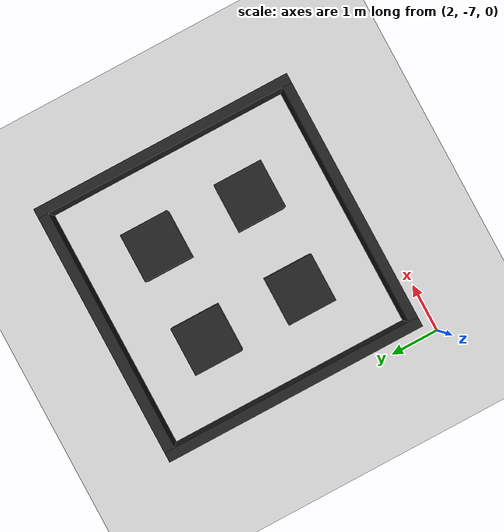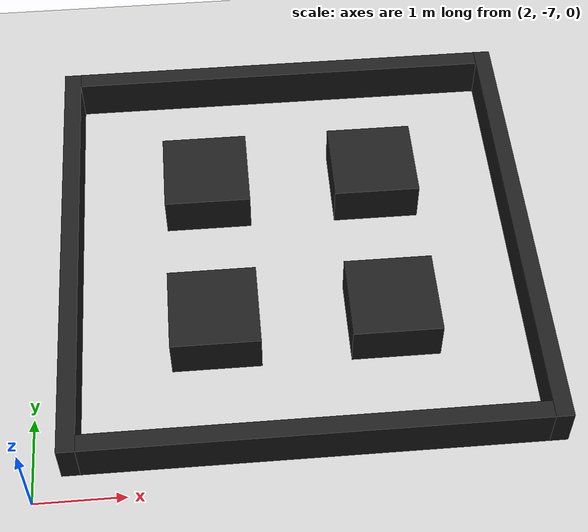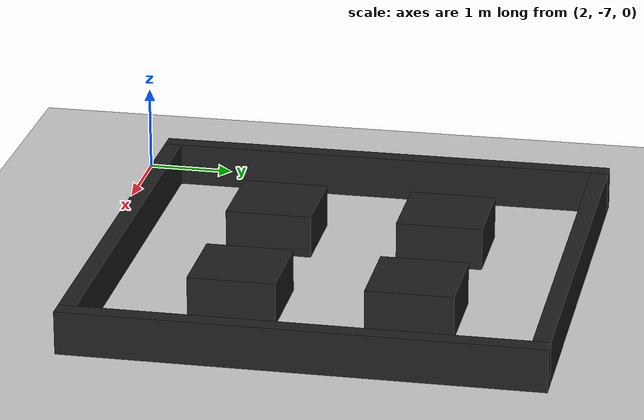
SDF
<sdf version='1.4'>
  <world name='default'>
    <!-- A global light source -->
    <include>
      <uri>model://sun</uri>
    </include>

    <!-- A ground plane -->
    <include>
      <uri>model://ground_plane</uri>
    </include>

    <physics type="ode">
      <real_time_update_rate>1000.0</real_time_update_rate>
      <max_step_size>0.001</max_step_size>
      <real_time_factor>1</real_time_factor>
      <ode>
        <solver>
          <type>quick</type>
          <iters>150</iters>
          <precon_iters>0</precon_iters>
          <sor>1.400000</sor>
          <use_dynamic_moi_rescaling>1</use_dynamic_moi_rescaling>
        </solver>
        <constraints>
          <cfm>0.00001</cfm>
          <erp>0.2</erp>
          <contact_max_correcting_vel>2000.000000</contact_max_correcting_vel>
          <contact_surface_layer>0.01000</contact_surface_layer>
        </constraints>
      </ode>
    </physics>

    <include>
      <uri>model://rmf_3x3</uri>
    </include>

    <scene>
      <ambient>0.4 0.4 0.4 1</ambient>
      <background>0.7 0.7 0.7 1</background>
      <shadows>true</shadows>
    </scene>

    <gui fullscreen='0'>
      <camera name='user_camera'>
        <pose>0.0 0.0 17.0 0 1.5708 -1.5708</pose>
        <view_controller>orbit</view_controller>
      </camera>
    </gui>
  </world>
</sdf>

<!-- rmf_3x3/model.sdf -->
<sdf version='1.5'>
  <model name='3x3'>
    <static>1</static>
    <link name='Wall_EAST'>
      <collision name='Wall_EAST_Collision'>
        <pose>7.6 -4 0.25 0 0 0</pose>
        <geometry>
          <box>
            <size>0.2 5.4 0.5</size>
          </box>
        </geometry>
        <surface>
          <friction>
            <ode>
              <mu>1</mu>
              <mu2>1</mu2>
              <fdir1>0 0 0</fdir1>
              <slip1>0</slip1>
              <slip2>0</slip2>
            </ode>
            <torsional>
              <coefficient>1</coefficient>
              <patch_radius>0</patch_radius>
              <surface_radius>0</surface_radius>
              <use_patch_radius>1</use_patch_radius>
              <ode>
                <slip>0</slip>
              </ode>
            </torsional>
          </friction>
          <bounce>
            <restitution_coefficient>0</restitution_coefficient>
            <threshold>1e+06</threshold>
          </bounce>
          <contact>
            <collide_without_contact>0</collide_without_contact>
            <collide_without_contact_bitmask>1</collide_without_contact_bitmask>
            <collide_bitmask>1</collide_bitmask>
            <ode>
              <soft_cfm>0</soft_cfm>
              <soft_erp>0.2</soft_erp>
              <kp>1e+13</kp>
              <kd>1</kd>
              <max_vel>0.01</max_vel>
              <min_depth>0</min_depth>
            </ode>
            <bullet>
              <split_impulse>1</split_impulse>
              <split_impulse_penetration_threshold>-0.01</split_impulse_penetration_threshold>
              <soft_cfm>0</soft_cfm>
              <soft_erp>0.2</soft_erp>
              <kp>1e+13</kp>
              <kd>1</kd>
            </bullet>
          </contact>
        </surface>
      </collision>

      <visual name='Wall_EAST_Visual'>
        <pose>7.6 -4 0.25 0 0 0</pose>
        <geometry>
          <box>
            <size>0.2 5.4 0.5</size>
          </box>
        </geometry>
        <material>
          <script>
            <name>Gazebo/Black</name>
          </script>
        </material>
      </visual>
    </link>

    <link name='Wall_WEST'>
      <collision name='Wall_WEST_Collision'>
        <pose>2.4 -4 0.25 0 0 0</pose>
        <geometry>
          <box>
            <size>0.2 5.4 0.5</size>
          </box>
        </geometry>
        <surface>
          <friction>
            <ode>
              <mu>1</mu>
              <mu2>1</mu2>
              <fdir1>0 0 0</fdir1>
              <slip1>0</slip1>
              <slip2>0</slip2>
            </ode>
            <torsional>
              <coefficient>1</coefficient>
              <patch_radius>0</patch_radius>
              <surface_radius>0</surface_radius>
              <use_patch_radius>1</use_patch_radius>
              <ode>
                <slip>0</slip>
              </ode>
            </torsional>
          </friction>
          <bounce>
            <restitution_coefficient>0</restitution_coefficient>
            <threshold>1e+06</threshold>
          </bounce>
          <contact>
            <collide_without_contact>0</collide_without_contact>
            <collide_without_contact_bitmask>1</collide_without_contact_bitmask>
            <collide_bitmask>1</collide_bitmask>
            <ode>
              <soft_cfm>0</soft_cfm>
              <soft_erp>0.2</soft_erp>
              <kp>1e+13</kp>
              <kd>1</kd>
              <max_vel>0.01</max_vel>
              <min_depth>0</min_depth>
            </ode>
            <bullet>
              <split_impulse>1</split_impulse>
              <split_impulse_penetration_threshold>-0.01</split_impulse_penetration_threshold>
              <soft_cfm>0</soft_cfm>
              <soft_erp>0.2</soft_erp>
              <kp>1e+13</kp>
              <kd>1</kd>
            </bullet>
          </contact>
        </surface>
      </collision>

      <visual name='Wall_SOUTH_Visual'>
        <pose>2.4 -4 0.25 0 0 0</pose>
        <geometry>
          <box>
            <size>0.2 5.4 0.5</size>
          </box>
        </geometry>
        <material>
          <script>
            <name>Gazebo/Black</name>
          </script>
        </material>
      </visual>
    </link>

    <link name='Wall_SOUTH'>
      <collision name='Wall_SOUTH_Collision'>
        <pose>5 -6.6 0.25 0 0 0</pose>
        <geometry>
          <box>
            <size>5 0.2 0.5</size>
          </box>
        </geometry>
        <surface>
          <friction>
            <ode>
              <mu>1</mu>
              <mu2>1</mu2>
              <fdir1>0 0 0</fdir1>
              <slip1>0</slip1>
              <slip2>0</slip2>
            </ode>
            <torsional>
              <coefficient>1</coefficient>
              <patch_radius>0</patch_radius>
              <surface_radius>0</surface_radius>
              <use_patch_radius>1</use_patch_radius>
              <ode>
                <slip>0</slip>
              </ode>
            </torsional>
          </friction>
          <bounce>
            <restitution_coefficient>0</restitution_coefficient>
            <threshold>1e+06</threshold>
          </bounce>
          <contact>
            <collide_without_contact>0</collide_without_contact>
            <collide_without_contact_bitmask>1</collide_without_contact_bitmask>
            <collide_bitmask>1</collide_bitmask>
            <ode>
              <soft_cfm>0</soft_cfm>
              <soft_erp>0.2</soft_erp>
              <kp>1e+13</kp>
              <kd>1</kd>
              <max_vel>0.01</max_vel>
              <min_depth>0</min_depth>
            </ode>
            <bullet>
              <split_impulse>1</split_impulse>
              <split_impulse_penetration_threshold>-0.01</split_impulse_penetration_threshold>
              <soft_cfm>0</soft_cfm>
              <soft_erp>0.2</soft_erp>
              <kp>1e+13</kp>
              <kd>1</kd>
            </bullet>
          </contact>
        </surface>
      </collision>

      <visual name='Wall_SOUTH_Visual'>
        <pose>5 -6.6 0.25 0 0 0</pose>
        <geometry>
          <box>
            <size>5 0.2 0.5</size>
          </box>
        </geometry>
        <material>
          <script>
            <name>Gazebo/Black</name>
          </script>
        </material>
      </visual>
    </link>

    <link name='Wall_NORTH'>
      <collision name='Wall_NORTH_Collision'>
        <pose>5 -1.4 0.25 0 0 0</pose>
        <geometry>
          <box>
            <size>5 0.2 0.5</size>
          </box>
        </geometry>
        <surface>
          <friction>
            <ode>
              <mu>1</mu>
              <mu2>1</mu2>
              <fdir1>0 0 0</fdir1>
              <slip1>0</slip1>
              <slip2>0</slip2>
            </ode>
            <torsional>
              <coefficient>1</coefficient>
              <patch_radius>0</patch_radius>
              <surface_radius>0</surface_radius>
              <use_patch_radius>1</use_patch_radius>
              <ode>
                <slip>0</slip>
              </ode>
            </torsional>
          </friction>
          <bounce>
            <restitution_coefficient>0</restitution_coefficient>
            <threshold>1e+06</threshold>
          </bounce>
          <contact>
            <collide_without_contact>0</collide_without_contact>
            <collide_without_contact_bitmask>1</collide_without_contact_bitmask>
            <collide_bitmask>1</collide_bitmask>
            <ode>
              <soft_cfm>0</soft_cfm>
              <soft_erp>0.2</soft_erp>
              <kp>1e+13</kp>
              <kd>1</kd>
              <max_vel>0.01</max_vel>
              <min_depth>0</min_depth>
            </ode>
            <bullet>
              <split_impulse>1</split_impulse>
              <split_impulse_penetration_threshold>-0.01</split_impulse_penetration_threshold>
              <soft_cfm>0</soft_cfm>
              <soft_erp>0.2</soft_erp>
              <kp>1e+13</kp>
              <kd>1</kd>
            </bullet>
          </contact>
        </surface>
      </collision>

      <visual name='Wall_NORTH_Visual'>
        <pose>5 -1.4 0.25 0 0 0</pose>
        <geometry>
          <box>
            <size>5 0.2 0.5</size>
          </box>
        </geometry>
        <material>
          <script>
            <name>Gazebo/Black</name>
          </script>
        </material>
      </visual>
    </link>

    <link name='Box1'>
      <collision name='Box1_Collision'>
        <pose>4 -3 0.25 0 0 0</pose>
        <geometry>
          <box>
            <size>1 1 0.5</size>
          </box>
        </geometry>
        <surface>
          <friction>
            <ode>
              <mu>1</mu>
              <mu2>1</mu2>
              <fdir1>0 0 0</fdir1>
              <slip1>0</slip1>
              <slip2>0</slip2>
            </ode>
            <torsional>
              <coefficient>1</coefficient>
              <patch_radius>0</patch_radius>
              <surface_radius>0</surface_radius>
              <use_patch_radius>1</use_patch_radius>
              <ode>
                <slip>0</slip>
              </ode>
            </torsional>
          </friction>
          <bounce>
            <restitution_coefficient>0</restitution_coefficient>
            <threshold>1e+06</threshold>
          </bounce>
          <contact>
            <collide_without_contact>0</collide_without_contact>
            <collide_without_contact_bitmask>1</collide_without_contact_bitmask>
            <collide_bitmask>1</collide_bitmask>
            <ode>
              <soft_cfm>0</soft_cfm>
              <soft_erp>0.2</soft_erp>
              <kp>1e+13</kp>
              <kd>1</kd>
              <max_vel>0.01</max_vel>
              <min_depth>0</min_depth>
            </ode>
            <bullet>
              <split_impulse>1</split_impulse>
              <split_impulse_penetration_threshold>-0.01</split_impulse_penetration_threshold>
              <soft_cfm>0</soft_cfm>
              <soft_erp>0.2</soft_erp>
              <kp>1e+13</kp>
              <kd>1</kd>
            </bullet>
          </contact>
        </surface>
      </collision>

      <visual name='Box1_Visual'>
        <pose>4 -3 0.25 0 0 0</pose>
        <geometry>
          <box>
            <size>1 1 0.5</size>
          </box>
        </geometry>
        <material>
          <script>
            <name>Gazebo/Black</name>
          </script>
        </material>
      </visual>
    </link>

    <link name='Box2'>
      <collision name='Box2_Collision'>
        <pose>6 -3 0.25 0 0 0</pose>
        <geometry>
          <box>
            <size>1 1 0.5</size>
          </box>
        </geometry>
        <surface>
          <friction>
            <ode>
              <mu>1</mu>
              <mu2>1</mu2>
              <fdir1>0 0 0</fdir1>
              <slip1>0</slip1>
              <slip2>0</slip2>
            </ode>
            <torsional>
              <coefficient>1</coefficient>
              <patch_radius>0</patch_radius>
              <surface_radius>0</surface_radius>
              <use_patch_radius>1</use_patch_radius>
              <ode>
                <slip>0</slip>
              </ode>
            </torsional>
          </friction>
          <bounce>
            <restitution_coefficient>0</restitution_coefficient>
            <threshold>1e+06</threshold>
          </bounce>
          <contact>
            <collide_without_contact>0</collide_without_contact>
            <collide_without_contact_bitmask>1</collide_without_contact_bitmask>
            <collide_bitmask>1</collide_bitmask>
            <ode>
              <soft_cfm>0</soft_cfm>
              <soft_erp>0.2</soft_erp>
              <kp>1e+13</kp>
              <kd>1</kd>
              <max_vel>0.01</max_vel>
              <min_depth>0</min_depth>
            </ode>
            <bullet>
              <split_impulse>1</split_impulse>
              <split_impulse_penetration_threshold>-0.01</split_impulse_penetration_threshold>
              <soft_cfm>0</soft_cfm>
              <soft_erp>0.2</soft_erp>
              <kp>1e+13</kp>
              <kd>1</kd>
            </bullet>
          </contact>
        </surface>
      </collision>

      <visual name='Box2_Visual'>
        <pose>6 -3 0.25 0 0 0</pose>
        <geometry>
          <box>
            <size>1 1 0.5</size>
          </box>
        </geometry>
        <material>
          <script>
            <name>Gazebo/Black</name>
          </script>
        </material>
      </visual>
    </link>

    <link name='Box3'>
      <collision name='Box3_Collision'>
        <pose>4 -5 0.25 0 0 0</pose>
        <geometry>
          <box>
            <size>1 1 0.5</size>
          </box>
        </geometry>
        <surface>
          <friction>
            <ode>
              <mu>1</mu>
              <mu2>1</mu2>
              <fdir1>0 0 0</fdir1>
              <slip1>0</slip1>
              <slip2>0</slip2>
            </ode>
            <torsional>
              <coefficient>1</coefficient>
              <patch_radius>0</patch_radius>
              <surface_radius>0</surface_radius>
              <use_patch_radius>1</use_patch_radius>
              <ode>
                <slip>0</slip>
              </ode>
            </torsional>
          </friction>
          <bounce>
            <restitution_coefficient>0</restitution_coefficient>
            <threshold>1e+06</threshold>
          </bounce>
          <contact>
            <collide_without_contact>0</collide_without_contact>
            <collide_without_contact_bitmask>1</collide_without_contact_bitmask>
            <collide_bitmask>1</collide_bitmask>
            <ode>
              <soft_cfm>0</soft_cfm>
              <soft_erp>0.2</soft_erp>
              <kp>1e+13</kp>
              <kd>1</kd>
              <max_vel>0.01</max_vel>
              <min_depth>0</min_depth>
            </ode>
            <bullet>
              <split_impulse>1</split_impulse>
              <split_impulse_penetration_threshold>-0.01</split_impulse_penetration_threshold>
              <soft_cfm>0</soft_cfm>
              <soft_erp>0.2</soft_erp>
              <kp>1e+13</kp>
              <kd>1</kd>
            </bullet>
          </contact>
        </surface>
      </collision>

      <visual name='Box3_Visual'>
        <pose>4 -5 0.25 0 0 0</pose>
        <geometry>
          <box>
            <size>1 1 0.5</size>
          </box>
        </geometry>
        <material>
          <script>
            <name>Gazebo/Black</name>
          </script>
        </material>
      </visual>
    </link>

    <link name='Box4'>
      <collision name='Box4_Collision'>
        <pose>6 -5 0.25 0 0 0</pose>
        <geometry>
          <box>
            <size>1 1 0.5</size>
          </box>
        </geometry>
        <surface>
          <friction>
            <ode>
              <mu>1</mu>
              <mu2>1</mu2>
              <fdir1>0 0 0</fdir1>
              <slip1>0</slip1>
              <slip2>0</slip2>
            </ode>
            <torsional>
              <coefficient>1</coefficient>
              <patch_radius>0</patch_radius>
              <surface_radius>0</surface_radius>
              <use_patch_radius>1</use_patch_radius>
              <ode>
                <slip>0</slip>
              </ode>
            </torsional>
          </friction>
          <bounce>
            <restitution_coefficient>0</restitution_coefficient>
            <threshold>1e+06</threshold>
          </bounce>
          <contact>
            <collide_without_contact>0</collide_without_contact>
            <collide_without_contact_bitmask>1</collide_without_contact_bitmask>
            <collide_bitmask>1</collide_bitmask>
            <ode>
              <soft_cfm>0</soft_cfm>
              <soft_erp>0.2</soft_erp>
              <kp>1e+13</kp>
              <kd>1</kd>
              <max_vel>0.01</max_vel>
              <min_depth>0</min_depth>
            </ode>
            <bullet>
              <split_impulse>1</split_impulse>
              <split_impulse_penetration_threshold>-0.01</split_impulse_penetration_threshold>
              <soft_cfm>0</soft_cfm>
              <soft_erp>0.2</soft_erp>
              <kp>1e+13</kp>
              <kd>1</kd>
            </bullet>
          </contact>
        </surface>
      </collision>

      <visual name='Box4_Visual'>
        <pose>6 -5 0.25 0 0 0</pose>
        <geometry>
          <box>
            <size>1 1 0.5</size>
          </box>
        </geometry>
        <material>
          <script>
            <name>Gazebo/Black</name>
          </script>
        </material>
      </visual>
    </link>

  </model>
</sdf>
